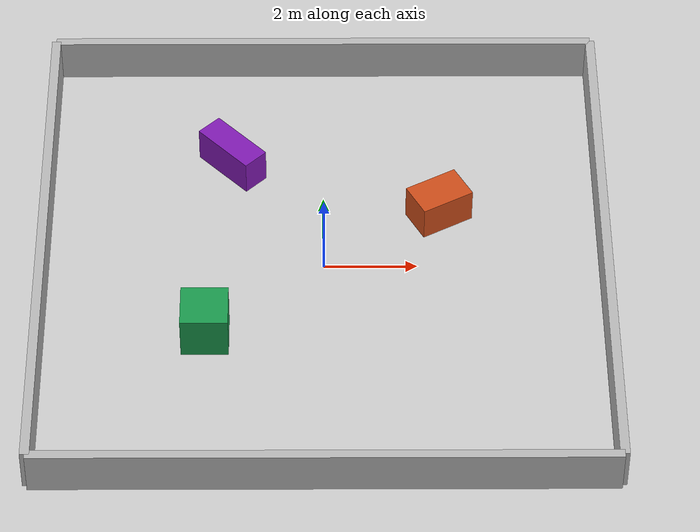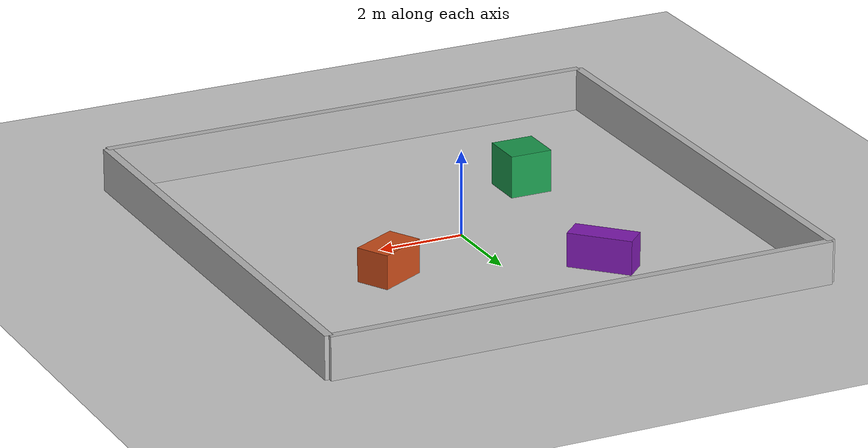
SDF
<?xml version="1.0"?>
<sdf version="1.6">
  <world name="test_world">

    <!-- Gravity (m/s^2) -->
    <gravity>0 0 -9.81</gravity>

    <!-- Environment lighting / scene -->
    <scene>
      <ambient>0.45 0.45 0.45 1</ambient>
      <background>0.7 0.7 0.85 1</background>
      <shadows>true</shadows>
    </scene>

    <!-- Physics engine (ODE) -->
    <physics name="default_physics" default="true" type="ode">
      <max_step_size>0.005</max_step_size>
      <real_time_factor>1.0</real_time_factor>
      <real_time_update_rate>200</real_time_update_rate>
      <ode>
        <solver>
          <type>quick</type>
          <iters>150</iters>
          <sor>1.3</sor>
        </solver>
        <constraints>
          <cfm>0.0</cfm>
          <erp>0.2</erp>
          <contact_max_correcting_vel>100.0</contact_max_correcting_vel>
          <contact_surface_layer>0.001</contact_surface_layer>
        </constraints>
      </ode>
    </physics>

    <include><uri>model://ground_plane</uri></include>
    <include><uri>model://sun</uri></include>

    <!-- Perimeter walls to give the lidar something to see -->
    <model name="wall_north">
      <static>true</static>
      <pose>0 6 0.5 0 0 0</pose>
      <link name="link">
        <visual name="visual"><geometry><box><size>12 0.2 1</size></box></geometry></visual>
        <collision name="collision"><geometry><box><size>12 0.2 1</size></box></geometry></collision>
      </link>
    </model>
    <model name="wall_south">
      <static>true</static>
      <pose>0 -6 0.5 0 0 0</pose>
      <link name="link">
        <visual name="visual"><geometry><box><size>12 0.2 1</size></box></geometry></visual>
        <collision name="collision"><geometry><box><size>12 0.2 1</size></box></geometry></collision>
      </link>
    </model>
    <model name="wall_east">
      <static>true</static>
      <pose>6 0 0.5 0 0 1.5708</pose>
      <link name="link">
        <visual name="visual"><geometry><box><size>12 0.2 1</size></box></geometry></visual>
        <collision name="collision"><geometry><box><size>12 0.2 1</size></box></geometry></collision>
      </link>
    </model>
    <model name="wall_west">
      <static>true</static>
      <pose>-6 0 0.5 0 0 1.5708</pose>
      <link name="link">
        <visual name="visual"><geometry><box><size>12 0.2 1</size></box></geometry></visual>
        <collision name="collision"><geometry><box><size>12 0.2 1</size></box></geometry></collision>
      </link>
    </model>

    <!-- Obstacle boxes -->
    <model name="box1">
      <static>true</static>
      <pose>2.5 1.5 0.4 0 0 0.5</pose>
      <link name="link">
        <visual name="visual">
          <geometry><box><size>1.2 0.8 0.8</size></box></geometry>
          <material><ambient>0.8 0.3 0.1 1</ambient></material>
        </visual>
        <collision name="collision"><geometry><box><size>1.2 0.8 0.8</size></box></geometry></collision>
      </link>
    </model>
    <model name="box2">
      <static>true</static>
      <pose>-2.5 -2 0.5 0 0 0</pose>
      <link name="link">
        <visual name="visual">
          <geometry><box><size>1 1 1</size></box></geometry>
          <material><ambient>0.1 0.6 0.3 1</ambient></material>
        </visual>
        <collision name="collision"><geometry><box><size>1 1 1</size></box></geometry></collision>
      </link>
    </model>
    <model name="box3">
      <static>true</static>
      <pose>-2 3 0.4 0 0 -0.8</pose>
      <link name="link">
        <visual name="visual">
          <geometry><box><size>1.5 0.6 0.8</size></box></geometry>
          <material><ambient>0.5 0.1 0.7 1</ambient></material>
        </visual>
        <collision name="collision"><geometry><box><size>1.5 0.6 0.8</size></box></geometry></collision>
      </link>
    </model>

  </world>
</sdf>
